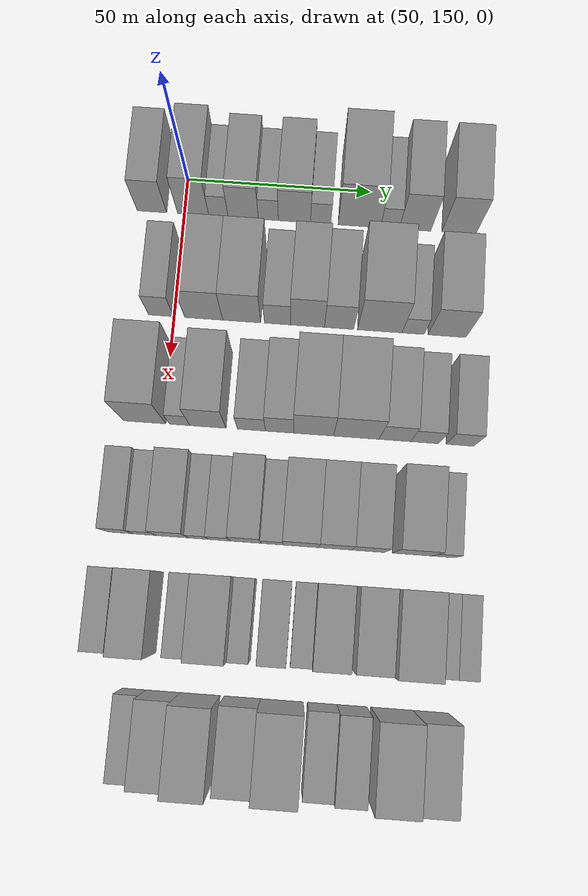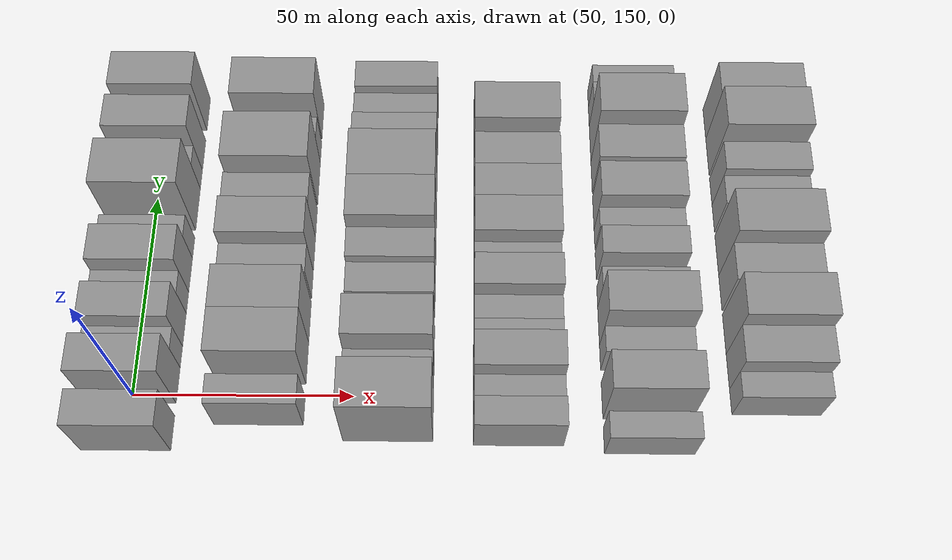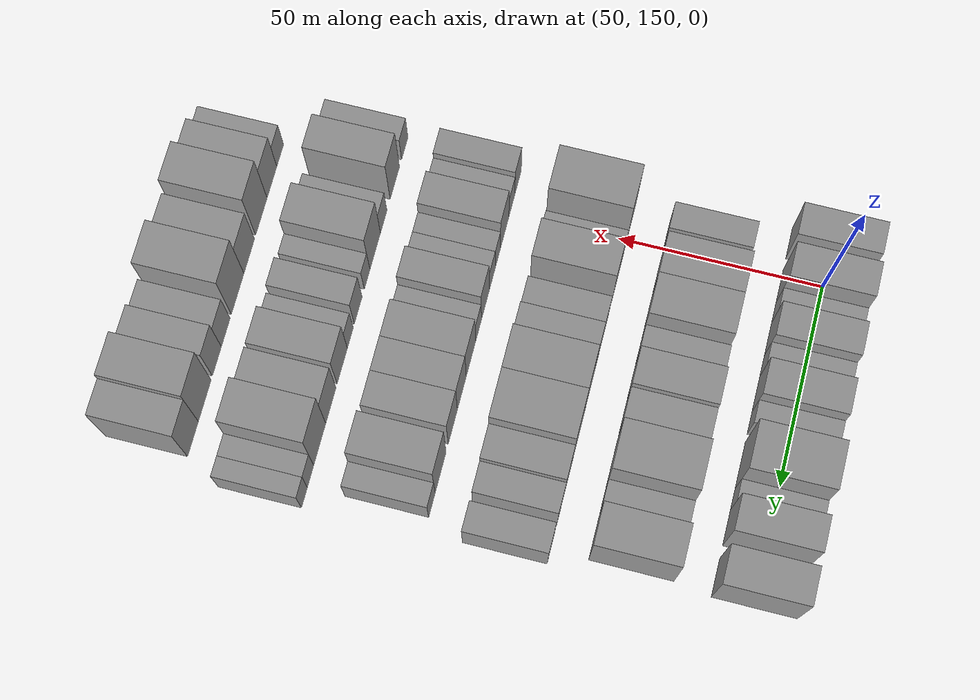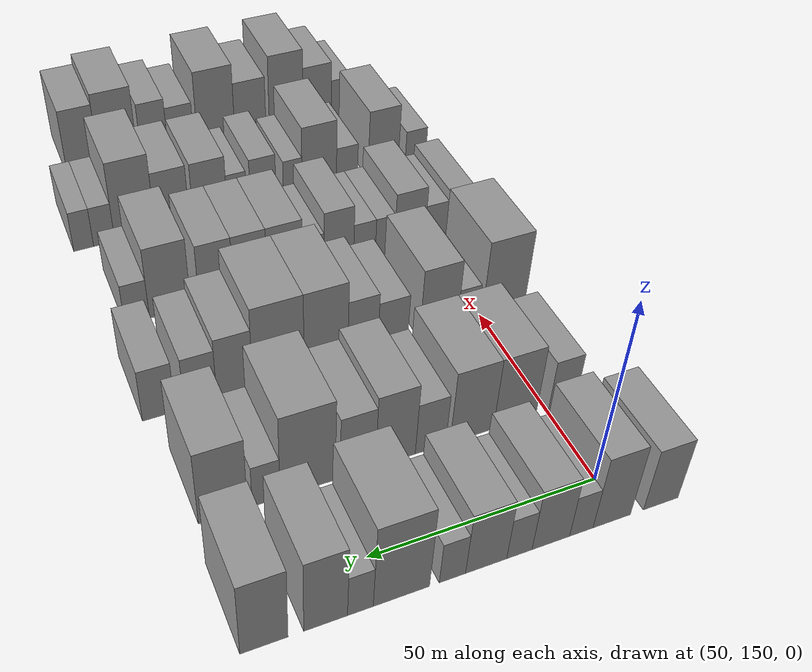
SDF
<sdf version="1.6">
 <world name="default">
  <model name="building_71">
   <static>1</static>
   <pose>50.0000 141.1363 0 0.000000 0.000000 0.000000</pose>
   <link name="link">
    <pose>0 0 9.00 0 0 0</pose>
    <collision name="collision"><geometry><box><size>20.0000 7.9999 18.0000</size></box></geometry></collision>
    <visual name="visual">
     <cast_shadows>0</cast_shadows>
     <geometry><box><size>20.0000 7.9999 18.0000</size></box></geometry>
     <material>
      <script>
       <uri>model://grey_wall/materials/scripts</uri>
       <uri>model://grey_wall/materials/textures</uri>
       <name>vrc/grey_wall</name>
      </script>
     </material>
    </visual>
   </link>
  </model>
  <model name="building_72">
   <static>1</static>
   <pose>50.0000 152.3691 0 0.000000 0.000000 0.000000</pose>
   <link name="link">
    <pose>0 0 10.50 0 0 0</pose>
    <collision name="collision"><geometry><box><size>20.0000 8.4655 21.0000</size></box></geometry></collision>
    <visual name="visual">
     <cast_shadows>0</cast_shadows>
     <geometry><box><size>20.0000 8.4655 21.0000</size></box></geometry>
     <material>
      <script>
       <uri>model://grey_wall/materials/scripts</uri>
       <uri>model://grey_wall/materials/textures</uri>
       <name>vrc/grey_wall</name>
      </script>
     </material>
    </visual>
   </link>
  </model>
  <model name="building_73">
   <static>1</static>
   <pose>50.0000 159.2128 0 0.000000 0.000000 0.000000</pose>
   <link name="link">
    <pose>0 0 6.00 0 0 0</pose>
    <collision name="collision"><geometry><box><size>20.0000 5.2221 12.0000</size></box></geometry></collision>
    <visual name="visual">
     <cast_shadows>0</cast_shadows>
     <geometry><box><size>20.0000 5.2221 12.0000</size></box></geometry>
     <material>
      <script>
       <uri>model://grey_wall/materials/scripts</uri>
       <uri>model://grey_wall/materials/textures</uri>
       <name>vrc/grey_wall</name>
      </script>
     </material>
    </visual>
   </link>
  </model>
  <model name="building_74">
   <static>1</static>
   <pose>50.0000 165.9320 0 0.000000 0.000000 0.000000</pose>
   <link name="link">
    <pose>0 0 9.00 0 0 0</pose>
    <collision name="collision"><geometry><box><size>20.0000 8.2162 18.0000</size></box></geometry></collision>
    <visual name="visual">
     <cast_shadows>0</cast_shadows>
     <geometry><box><size>20.0000 8.2162 18.0000</size></box></geometry>
     <material>
      <script>
       <uri>model://grey_wall/materials/scripts</uri>
       <uri>model://grey_wall/materials/textures</uri>
       <name>vrc/grey_wall</name>
      </script>
     </material>
    </visual>
   </link>
  </model>
  <model name="building_75">
   <static>1</static>
   <pose>50.0000 172.7649 0 0.000000 0.000000 0.000000</pose>
   <link name="link">
    <pose>0 0 6.00 0 0 0</pose>
    <collision name="collision"><geometry><box><size>20.0000 5.4496 12.0000</size></box></geometry></collision>
    <visual name="visual">
     <cast_shadows>0</cast_shadows>
     <geometry><box><size>20.0000 5.4496 12.0000</size></box></geometry>
     <material>
      <script>
       <uri>model://grey_wall/materials/scripts</uri>
       <uri>model://grey_wall/materials/textures</uri>
       <name>vrc/grey_wall</name>
      </script>
     </material>
    </visual>
   </link>
  </model>
  <model name="building_76">
   <static>1</static>
   <pose>50.0000 179.8505 0 0.000000 0.000000 0.000000</pose>
   <link name="link">
    <pose>0 0 9.00 0 0 0</pose>
    <collision name="collision"><geometry><box><size>20.0000 8.7217 18.0000</size></box></geometry></collision>
    <visual name="visual">
     <cast_shadows>0</cast_shadows>
     <geometry><box><size>20.0000 8.7217 18.0000</size></box></geometry>
     <material>
      <script>
       <uri>model://grey_wall/materials/scripts</uri>
       <uri>model://grey_wall/materials/textures</uri>
       <name>vrc/grey_wall</name>
      </script>
     </material>
    </visual>
   </link>
  </model>
  <model name="building_77">
   <static>1</static>
   <pose>50.0000 186.9442 0 0.000000 0.000000 0.000000</pose>
   <link name="link">
    <pose>0 0 6.00 0 0 0</pose>
    <collision name="collision"><geometry><box><size>20.0000 5.4655 12.0000</size></box></geometry></collision>
    <visual name="visual">
     <cast_shadows>0</cast_shadows>
     <geometry><box><size>20.0000 5.4655 12.0000</size></box></geometry>
     <material>
      <script>
       <uri>model://grey_wall/materials/scripts</uri>
       <uri>model://grey_wall/materials/textures</uri>
       <name>vrc/grey_wall</name>
      </script>
     </material>
    </visual>
   </link>
  </model>
  <model name="building_78">
   <static>1</static>
   <pose>50.0000 197.3817 0 0.000000 0.000000 0.000000</pose>
   <link name="link">
    <pose>0 0 12.00 0 0 0</pose>
    <collision name="collision"><geometry><box><size>20.0000 11.4096 24.0000</size></box></geometry></collision>
    <visual name="visual">
     <cast_shadows>0</cast_shadows>
     <geometry><box><size>20.0000 11.4096 24.0000</size></box></geometry>
     <material>
      <script>
       <uri>model://grey_wall/materials/scripts</uri>
       <uri>model://grey_wall/materials/textures</uri>
       <name>vrc/grey_wall</name>
      </script>
     </material>
    </visual>
   </link>
  </model>
  <model name="building_79">
   <static>1</static>
   <pose>50.0000 205.6428 0 0.000000 0.000000 0.000000</pose>
   <link name="link">
    <pose>0 0 6.00 0 0 0</pose>
    <collision name="collision"><geometry><box><size>20.0000 5.1127 12.0000</size></box></geometry></collision>
    <visual name="visual">
     <cast_shadows>0</cast_shadows>
     <geometry><box><size>20.0000 5.1127 12.0000</size></box></geometry>
     <material>
      <script>
       <uri>model://grey_wall/materials/scripts</uri>
       <uri>model://grey_wall/materials/textures</uri>
       <name>vrc/grey_wall</name>
      </script>
     </material>
    </visual>
   </link>
  </model>
  <model name="building_80">
   <static>1</static>
   <pose>50.0000 212.4688 0 0.000000 0.000000 0.000000</pose>
   <link name="link">
    <pose>0 0 10.50 0 0 0</pose>
    <collision name="collision"><geometry><box><size>20.0000 8.5393 21.0000</size></box></geometry></collision>
    <visual name="visual">
     <cast_shadows>0</cast_shadows>
     <geometry><box><size>20.0000 8.5393 21.0000</size></box></geometry>
     <material>
      <script>
       <uri>model://grey_wall/materials/scripts</uri>
       <uri>model://grey_wall/materials/textures</uri>
       <name>vrc/grey_wall</name>
      </script>
     </material>
    </visual>
   </link>
  </model>
  <model name="building_81">
   <static>1</static>
   <pose>50.0000 224.3114 0 0.000000 0.000000 0.000000</pose>
   <link name="link">
    <pose>0 0 10.50 0 0 0</pose>
    <collision name="collision"><geometry><box><size>20.0000 9.1458 21.0000</size></box></geometry></collision>
    <visual name="visual">
     <cast_shadows>0</cast_shadows>
     <geometry><box><size>20.0000 9.1458 21.0000</size></box></geometry>
     <material>
      <script>
       <uri>model://grey_wall/materials/scripts</uri>
       <uri>model://grey_wall/materials/textures</uri>
       <name>vrc/grey_wall</name>
      </script>
     </material>
    </visual>
   </link>
  </model>
  <model name="building_188">
   <static>1</static>
   <pose>79.0000 146.5189 0 0.000000 0.000000 0.000000</pose>
   <link name="link">
    <pose>0 0 7.50 0 0 0</pose>
    <collision name="collision"><geometry><box><size>20.0000 6.6258 15.0000</size></box></geometry></collision>
    <visual name="visual">
     <cast_shadows>0</cast_shadows>
     <geometry><box><size>20.0000 6.6258 15.0000</size></box></geometry>
     <material>
      <script>
       <uri>model://grey_wall/materials/scripts</uri>
       <uri>model://grey_wall/materials/textures</uri>
       <name>vrc/grey_wall</name>
      </script>
     </material>
    </visual>
   </link>
  </model>
  <model name="building_189">
   <static>1</static>
   <pose>79.0000 157.8905 0 0.000000 0.000000 0.000000</pose>
   <link name="link">
    <pose>0 0 10.50 0 0 0</pose>
    <collision name="collision"><geometry><box><size>20.0000 10.1173 21.0000</size></box></geometry></collision>
    <visual name="visual">
     <cast_shadows>0</cast_shadows>
     <geometry><box><size>20.0000 10.1173 21.0000</size></box></geometry>
     <material>
      <script>
       <uri>model://grey_wall/materials/scripts</uri>
       <uri>model://grey_wall/materials/textures</uri>
       <name>vrc/grey_wall</name>
      </script>
     </material>
    </visual>
   </link>
  </model>
  <model name="building_190">
   <static>1</static>
   <pose>79.0000 167.9952 0 0.000000 0.000000 0.000000</pose>
   <link name="link">
    <pose>0 0 10.50 0 0 0</pose>
    <collision name="collision"><geometry><box><size>20.0000 10.0921 21.0000</size></box></geometry></collision>
    <visual name="visual">
     <cast_shadows>0</cast_shadows>
     <geometry><box><size>20.0000 10.0921 21.0000</size></box></geometry>
     <material>
      <script>
       <uri>model://grey_wall/materials/scripts</uri>
       <uri>model://grey_wall/materials/textures</uri>
       <name>vrc/grey_wall</name>
      </script>
     </material>
    </visual>
   </link>
  </model>
  <model name="building_191">
   <static>1</static>
   <pose>79.0000 177.5131 0 0.000000 0.000000 0.000000</pose>
   <link name="link">
    <pose>0 0 7.50 0 0 0</pose>
    <collision name="collision"><geometry><box><size>20.0000 6.9435 15.0000</size></box></geometry></collision>
    <visual name="visual">
     <cast_shadows>0</cast_shadows>
     <geometry><box><size>20.0000 6.9435 15.0000</size></box></geometry>
     <material>
      <script>
       <uri>model://grey_wall/materials/scripts</uri>
       <uri>model://grey_wall/materials/textures</uri>
       <name>vrc/grey_wall</name>
      </script>
     </material>
    </visual>
   </link>
  </model>
  <model name="building_192">
   <static>1</static>
   <pose>79.0000 185.4568 0 0.000000 0.000000 0.000000</pose>
   <link name="link">
    <pose>0 0 10.50 0 0 0</pose>
    <collision name="collision"><geometry><box><size>20.0000 8.9440 21.0000</size></box></geometry></collision>
    <visual name="visual">
     <cast_shadows>0</cast_shadows>
     <geometry><box><size>20.0000 8.9440 21.0000</size></box></geometry>
     <material>
      <script>
       <uri>model://grey_wall/materials/scripts</uri>
       <uri>model://grey_wall/materials/textures</uri>
       <name>vrc/grey_wall</name>
      </script>
     </material>
    </visual>
   </link>
  </model>
  <model name="building_193">
   <static>1</static>
   <pose>79.0000 193.8151 0 0.000000 0.000000 0.000000</pose>
   <link name="link">
    <pose>0 0 9.00 0 0 0</pose>
    <collision name="collision"><geometry><box><size>20.0000 7.7726 18.0000</size></box></geometry></collision>
    <visual name="visual">
     <cast_shadows>0</cast_shadows>
     <geometry><box><size>20.0000 7.7726 18.0000</size></box></geometry>
     <material>
      <script>
       <uri>model://grey_wall/materials/scripts</uri>
       <uri>model://grey_wall/materials/textures</uri>
       <name>vrc/grey_wall</name>
      </script>
     </material>
    </visual>
   </link>
  </model>
  <model name="building_194">
   <static>1</static>
   <pose>79.0000 204.6078 0 0.000000 0.000000 0.000000</pose>
   <link name="link">
    <pose>0 0 12.00 0 0 0</pose>
    <collision name="collision"><geometry><box><size>20.0000 11.8128 24.0000</size></box></geometry></collision>
    <visual name="visual">
     <cast_shadows>0</cast_shadows>
     <geometry><box><size>20.0000 11.8128 24.0000</size></box></geometry>
     <material>
      <script>
       <uri>model://grey_wall/materials/scripts</uri>
       <uri>model://grey_wall/materials/textures</uri>
       <name>vrc/grey_wall</name>
      </script>
     </material>
    </visual>
   </link>
  </model>
  <model name="building_195">
   <static>1</static>
   <pose>79.0000 213.4443 0 0.000000 0.000000 0.000000</pose>
   <link name="link">
    <pose>0 0 6.00 0 0 0</pose>
    <collision name="collision"><geometry><box><size>20.0000 5.8600 12.0000</size></box></geometry></collision>
    <visual name="visual">
     <cast_shadows>0</cast_shadows>
     <geometry><box><size>20.0000 5.8600 12.0000</size></box></geometry>
     <material>
      <script>
       <uri>model://grey_wall/materials/scripts</uri>
       <uri>model://grey_wall/materials/textures</uri>
       <name>vrc/grey_wall</name>
      </script>
     </material>
    </visual>
   </link>
  </model>
  <model name="building_196">
   <static>1</static>
   <pose>79.0000 222.4169 0 0.000000 0.000000 0.000000</pose>
   <link name="link">
    <pose>0 0 10.50 0 0 0</pose>
    <collision name="collision"><geometry><box><size>20.0000 10.0852 21.0000</size></box></geometry></collision>
    <visual name="visual">
     <cast_shadows>0</cast_shadows>
     <geometry><box><size>20.0000 10.0852 21.0000</size></box></geometry>
     <material>
      <script>
       <uri>model://grey_wall/materials/scripts</uri>
       <uri>model://grey_wall/materials/textures</uri>
       <name>vrc/grey_wall</name>
      </script>
     </material>
    </visual>
   </link>
  </model>
  <model name="building_300">
   <static>1</static>
   <pose>108.0000 145.1616 0 0.000000 0.000000 0.000000</pose>
   <link name="link">
    <pose>0 0 12.00 0 0 0</pose>
    <collision name="collision"><geometry><box><size>20.0000 11.0060 24.0000</size></box></geometry></collision>
    <visual name="visual">
     <cast_shadows>0</cast_shadows>
     <geometry><box><size>20.0000 11.0060 24.0000</size></box></geometry>
     <material>
      <script>
       <uri>model://grey_wall/materials/scripts</uri>
       <uri>model://grey_wall/materials/textures</uri>
       <name>vrc/grey_wall</name>
      </script>
     </material>
    </visual>
   </link>
  </model>
  <model name="building_301">
   <static>1</static>
   <pose>108.0000 154.2971 0 0.000000 0.000000 0.000000</pose>
   <link name="link">
    <pose>0 0 6.00 0 0 0</pose>
    <collision name="collision"><geometry><box><size>20.0000 5.2651 12.0000</size></box></geometry></collision>
    <visual name="visual">
     <cast_shadows>0</cast_shadows>
     <geometry><box><size>20.0000 5.2651 12.0000</size></box></geometry>
     <material>
      <script>
       <uri>model://grey_wall/materials/scripts</uri>
       <uri>model://grey_wall/materials/textures</uri>
       <name>vrc/grey_wall</name>
      </script>
     </material>
    </visual>
   </link>
  </model>
  <model name="building_302">
   <static>1</static>
   <pose>108.0000 161.6282 0 0.000000 0.000000 0.000000</pose>
   <link name="link">
    <pose>0 0 10.50 0 0 0</pose>
    <collision name="collision"><geometry><box><size>20.0000 9.3971 21.0000</size></box></geometry></collision>
    <visual name="visual">
     <cast_shadows>0</cast_shadows>
     <geometry><box><size>20.0000 9.3971 21.0000</size></box></geometry>
     <material>
      <script>
       <uri>model://grey_wall/materials/scripts</uri>
       <uri>model://grey_wall/materials/textures</uri>
       <name>vrc/grey_wall</name>
      </script>
     </material>
    </visual>
   </link>
  </model>
  <model name="building_303">
   <static>1</static>
   <pose>108.0000 172.9795 0 0.000000 0.000000 0.000000</pose>
   <link name="link">
    <pose>0 0 7.50 0 0 0</pose>
    <collision name="collision"><geometry><box><size>20.0000 7.3055 15.0000</size></box></geometry></collision>
    <visual name="visual">
     <cast_shadows>0</cast_shadows>
     <geometry><box><size>20.0000 7.3055 15.0000</size></box></geometry>
     <material>
      <script>
       <uri>model://grey_wall/materials/scripts</uri>
       <uri>model://grey_wall/materials/textures</uri>
       <name>vrc/grey_wall</name>
      </script>
     </material>
    </visual>
   </link>
  </model>
  <model name="building_304">
   <static>1</static>
   <pose>108.0000 180.2680 0 0.000000 0.000000 0.000000</pose>
   <link name="link">
    <pose>0 0 9.00 0 0 0</pose>
    <collision name="collision"><geometry><box><size>20.0000 7.2714 18.0000</size></box></geometry></collision>
    <visual name="visual">
     <cast_shadows>0</cast_shadows>
     <geometry><box><size>20.0000 7.2714 18.0000</size></box></geometry>
     <material>
      <script>
       <uri>model://grey_wall/materials/scripts</uri>
       <uri>model://grey_wall/materials/textures</uri>
       <name>vrc/grey_wall</name>
      </script>
     </material>
    </visual>
   </link>
  </model>
  <model name="building_305">
   <static>1</static>
   <pose>108.0000 189.0621 0 0.000000 0.000000 0.000000</pose>
   <link name="link">
    <pose>0 0 12.00 0 0 0</pose>
    <collision name="collision"><geometry><box><size>20.0000 10.3168 24.0000</size></box></geometry></collision>
    <visual name="visual">
     <cast_shadows>0</cast_shadows>
     <geometry><box><size>20.0000 10.3168 24.0000</size></box></geometry>
     <material>
      <script>
       <uri>model://grey_wall/materials/scripts</uri>
       <uri>model://grey_wall/materials/textures</uri>
       <name>vrc/grey_wall</name>
      </script>
     </material>
    </visual>
   </link>
  </model>
  <model name="building_306">
   <static>1</static>
   <pose>108.0000 200.1422 0 0.000000 0.000000 0.000000</pose>
   <link name="link">
    <pose>0 0 12.00 0 0 0</pose>
    <collision name="collision"><geometry><box><size>20.0000 11.8435 24.0000</size></box></geometry></collision>
    <visual name="visual">
     <cast_shadows>0</cast_shadows>
     <geometry><box><size>20.0000 11.8435 24.0000</size></box></geometry>
     <material>
      <script>
       <uri>model://grey_wall/materials/scripts</uri>
       <uri>model://grey_wall/materials/textures</uri>
       <name>vrc/grey_wall</name>
      </script>
     </material>
    </visual>
   </link>
  </model>
  <model name="building_307">
   <static>1</static>
   <pose>108.0000 210.1388 0 0.000000 0.000000 0.000000</pose>
   <link name="link">
    <pose>0 0 9.00 0 0 0</pose>
    <collision name="collision"><geometry><box><size>20.0000 8.1497 18.0000</size></box></geometry></collision>
    <visual name="visual">
     <cast_shadows>0</cast_shadows>
     <geometry><box><size>20.0000 8.1497 18.0000</size></box></geometry>
     <material>
      <script>
       <uri>model://grey_wall/materials/scripts</uri>
       <uri>model://grey_wall/materials/textures</uri>
       <name>vrc/grey_wall</name>
      </script>
     </material>
    </visual>
   </link>
  </model>
  <model name="building_308">
   <static>1</static>
   <pose>108.0000 217.8479 0 0.000000 0.000000 0.000000</pose>
   <link name="link">
    <pose>0 0 7.50 0 0 0</pose>
    <collision name="collision"><geometry><box><size>20.0000 7.2685 15.0000</size></box></geometry></collision>
    <visual name="visual">
     <cast_shadows>0</cast_shadows>
     <geometry><box><size>20.0000 7.2685 15.0000</size></box></geometry>
     <material>
      <script>
       <uri>model://grey_wall/materials/scripts</uri>
       <uri>model://grey_wall/materials/textures</uri>
       <name>vrc/grey_wall</name>
      </script>
     </material>
    </visual>
   </link>
  </model>
  <model name="building_309">
   <static>1</static>
   <pose>108.0000 227.0810 0 0.000000 0.000000 0.000000</pose>
   <link name="link">
    <pose>0 0 7.50 0 0 0</pose>
    <collision name="collision"><geometry><box><size>20.0000 7.1978 15.0000</size></box></geometry></collision>
    <visual name="visual">
     <cast_shadows>0</cast_shadows>
     <geometry><box><size>20.0000 7.1978 15.0000</size></box></geometry>
     <material>
      <script>
       <uri>model://grey_wall/materials/scripts</uri>
       <uri>model://grey_wall/materials/textures</uri>
       <name>vrc/grey_wall</name>
      </script>
     </material>
    </visual>
   </link>
  </model>
  <model name="building_408">
   <static>1</static>
   <pose>137.0000 142.1293 0 0.000000 0.000000 0.000000</pose>
   <link name="link">
    <pose>0 0 7.50 0 0 0</pose>
    <collision name="collision"><geometry><box><size>20.0000 6.4981 15.0000</size></box></geometry></collision>
    <visual name="visual">
     <cast_shadows>0</cast_shadows>
     <geometry><box><size>20.0000 6.4981 15.0000</size></box></geometry>
     <material>
      <script>
       <uri>model://grey_wall/materials/scripts</uri>
       <uri>model://grey_wall/materials/textures</uri>
       <name>vrc/grey_wall</name>
      </script>
     </material>
    </visual>
   </link>
  </model>
  <model name="building_409">
   <static>1</static>
   <pose>137.0000 148.3256 0 0.000000 0.000000 0.000000</pose>
   <link name="link">
    <pose>0 0 6.00 0 0 0</pose>
    <collision name="collision"><geometry><box><size>20.0000 5.8945 12.0000</size></box></geometry></collision>
    <visual name="visual">
     <cast_shadows>0</cast_shadows>
     <geometry><box><size>20.0000 5.8945 12.0000</size></box></geometry>
     <material>
      <script>
       <uri>model://grey_wall/materials/scripts</uri>
       <uri>model://grey_wall/materials/textures</uri>
       <name>vrc/grey_wall</name>
      </script>
     </material>
    </visual>
   </link>
  </model>
  <model name="building_410">
   <static>1</static>
   <pose>137.0000 155.3718 0 0.000000 0.000000 0.000000</pose>
   <link name="link">
    <pose>0 0 9.00 0 0 0</pose>
    <collision name="collision"><geometry><box><size>20.0000 8.1979 18.0000</size></box></geometry></collision>
    <visual name="visual">
     <cast_shadows>0</cast_shadows>
     <geometry><box><size>20.0000 8.1979 18.0000</size></box></geometry>
     <material>
      <script>
       <uri>model://grey_wall/materials/scripts</uri>
       <uri>model://grey_wall/materials/textures</uri>
       <name>vrc/grey_wall</name>
      </script>
     </material>
    </visual>
   </link>
  </model>
  <model name="building_411">
   <static>1</static>
   <pose>137.0000 161.9679 0 0.000000 0.000000 0.000000</pose>
   <link name="link">
    <pose>0 0 6.00 0 0 0</pose>
    <collision name="collision"><geometry><box><size>20.0000 4.9944 12.0000</size></box></geometry></collision>
    <visual name="visual">
     <cast_shadows>0</cast_shadows>
     <geometry><box><size>20.0000 4.9944 12.0000</size></box></geometry>
     <material>
      <script>
       <uri>model://grey_wall/materials/scripts</uri>
       <uri>model://grey_wall/materials/textures</uri>
       <name>vrc/grey_wall</name>
      </script>
     </material>
    </visual>
   </link>
  </model>
  <model name="building_412">
   <static>1</static>
   <pose>137.0000 167.3319 0 0.000000 0.000000 0.000000</pose>
   <link name="link">
    <pose>0 0 6.00 0 0 0</pose>
    <collision name="collision"><geometry><box><size>20.0000 5.7335 12.0000</size></box></geometry></collision>
    <visual name="visual">
     <cast_shadows>0</cast_shadows>
     <geometry><box><size>20.0000 5.7335 12.0000</size></box></geometry>
     <material>
      <script>
       <uri>model://grey_wall/materials/scripts</uri>
       <uri>model://grey_wall/materials/textures</uri>
       <name>vrc/grey_wall</name>
      </script>
     </material>
    </visual>
   </link>
  </model>
  <model name="building_413">
   <static>1</static>
   <pose>137.0000 174.0344 0 0.000000 0.000000 0.000000</pose>
   <link name="link">
    <pose>0 0 9.00 0 0 0</pose>
    <collision name="collision"><geometry><box><size>20.0000 7.6715 18.0000</size></box></geometry></collision>
    <visual name="visual">
     <cast_shadows>0</cast_shadows>
     <geometry><box><size>20.0000 7.6715 18.0000</size></box></geometry>
     <material>
      <script>
       <uri>model://grey_wall/materials/scripts</uri>
       <uri>model://grey_wall/materials/textures</uri>
       <name>vrc/grey_wall</name>
      </script>
     </material>
    </visual>
   </link>
  </model>
  <model name="building_414">
   <static>1</static>
   <pose>137.0000 180.6249 0 0.000000 0.000000 0.000000</pose>
   <link name="link">
    <pose>0 0 6.00 0 0 0</pose>
    <collision name="collision"><geometry><box><size>20.0000 5.5094 12.0000</size></box></geometry></collision>
    <visual name="visual">
     <cast_shadows>0</cast_shadows>
     <geometry><box><size>20.0000 5.5094 12.0000</size></box></geometry>
     <material>
      <script>
       <uri>model://grey_wall/materials/scripts</uri>
       <uri>model://grey_wall/materials/textures</uri>
       <name>vrc/grey_wall</name>
      </script>
     </material>
    </visual>
   </link>
  </model>
  <model name="building_415">
   <static>1</static>
   <pose>137.0000 187.8762 0 0.000000 0.000000 0.000000</pose>
   <link name="link">
    <pose>0 0 9.00 0 0 0</pose>
    <collision name="collision"><geometry><box><size>20.0000 8.9933 18.0000</size></box></geometry></collision>
    <visual name="visual">
     <cast_shadows>0</cast_shadows>
     <geometry><box><size>20.0000 8.9933 18.0000</size></box></geometry>
     <material>
      <script>
       <uri>model://grey_wall/materials/scripts</uri>
       <uri>model://grey_wall/materials/textures</uri>
       <name>vrc/grey_wall</name>
      </script>
     </material>
    </visual>
   </link>
  </model>
  <model name="building_416">
   <static>1</static>
   <pose>137.0000 196.5267 0 0.000000 0.000000 0.000000</pose>
   <link name="link">
    <pose>0 0 9.00 0 0 0</pose>
    <collision name="collision"><geometry><box><size>20.0000 8.3077 18.0000</size></box></geometry></collision>
    <visual name="visual">
     <cast_shadows>0</cast_shadows>
     <geometry><box><size>20.0000 8.3077 18.0000</size></box></geometry>
     <material>
      <script>
       <uri>model://grey_wall/materials/scripts</uri>
       <uri>model://grey_wall/materials/textures</uri>
       <name>vrc/grey_wall</name>
      </script>
     </material>
    </visual>
   </link>
  </model>
  <model name="building_417">
   <static>1</static>
   <pose>137.0000 204.8929 0 0.000000 0.000000 0.000000</pose>
   <link name="link">
    <pose>0 0 9.00 0 0 0</pose>
    <collision name="collision"><geometry><box><size>20.0000 8.4247 18.0000</size></box></geometry></collision>
    <visual name="visual">
     <cast_shadows>0</cast_shadows>
     <geometry><box><size>20.0000 8.4247 18.0000</size></box></geometry>
     <material>
      <script>
       <uri>model://grey_wall/materials/scripts</uri>
       <uri>model://grey_wall/materials/textures</uri>
       <name>vrc/grey_wall</name>
      </script>
     </material>
    </visual>
   </link>
  </model>
  <model name="building_418">
   <static>1</static>
   <pose>137.0000 216.0591 0 0.000000 0.000000 0.000000</pose>
   <link name="link">
    <pose>0 0 10.50 0 0 0</pose>
    <collision name="collision"><geometry><box><size>20.0000 9.9078 21.0000</size></box></geometry></collision>
    <visual name="visual">
     <cast_shadows>0</cast_shadows>
     <geometry><box><size>20.0000 9.9078 21.0000</size></box></geometry>
     <material>
      <script>
       <uri>model://grey_wall/materials/scripts</uri>
       <uri>model://grey_wall/materials/textures</uri>
       <name>vrc/grey_wall</name>
      </script>
     </material>
    </visual>
   </link>
  </model>
  <model name="building_419">
   <static>1</static>
   <pose>137.0000 223.9644 0 0.000000 0.000000 0.000000</pose>
   <link name="link">
    <pose>0 0 6.00 0 0 0</pose>
    <collision name="collision"><geometry><box><size>20.0000 5.9028 12.0000</size></box></geometry></collision>
    <visual name="visual">
     <cast_shadows>0</cast_shadows>
     <geometry><box><size>20.0000 5.9028 12.0000</size></box></geometry>
     <material>
      <script>
       <uri>model://grey_wall/materials/scripts</uri>
       <uri>model://grey_wall/materials/textures</uri>
       <name>vrc/grey_wall</name>
      </script>
     </material>
    </visual>
   </link>
  </model>
  <model name="building_527">
   <static>1</static>
   <pose>166.0000 140.1995 0 0.000000 0.000000 0.000000</pose>
   <link name="link">
    <pose>0 0 6.00 0 0 0</pose>
    <collision name="collision"><geometry><box><size>20.0000 5.9595 12.0000</size></box></geometry></collision>
    <visual name="visual">
     <cast_shadows>0</cast_shadows>
     <geometry><box><size>20.0000 5.9595 12.0000</size></box></geometry>
     <material>
      <script>
       <uri>model://grey_wall/materials/scripts</uri>
       <uri>model://grey_wall/materials/textures</uri>
       <name>vrc/grey_wall</name>
      </script>
     </material>
    </visual>
   </link>
  </model>
  <model name="building_528">
   <static>1</static>
   <pose>166.0000 149.4907 0 0.000000 0.000000 0.000000</pose>
   <link name="link">
    <pose>0 0 10.50 0 0 0</pose>
    <collision name="collision"><geometry><box><size>20.0000 8.6230 21.0000</size></box></geometry></collision>
    <visual name="visual">
     <cast_shadows>0</cast_shadows>
     <geometry><box><size>20.0000 8.6230 21.0000</size></box></geometry>
     <material>
      <script>
       <uri>model://grey_wall/materials/scripts</uri>
       <uri>model://grey_wall/materials/textures</uri>
       <name>vrc/grey_wall</name>
      </script>
     </material>
    </visual>
   </link>
  </model>
  <model name="building_529">
   <static>1</static>
   <pose>166.0000 159.7772 0 0.000000 0.000000 0.000000</pose>
   <link name="link">
    <pose>0 0 6.00 0 0 0</pose>
    <collision name="collision"><geometry><box><size>20.0000 5.9499 12.0000</size></box></geometry></collision>
    <visual name="visual">
     <cast_shadows>0</cast_shadows>
     <geometry><box><size>20.0000 5.9499 12.0000</size></box></geometry>
     <material>
      <script>
       <uri>model://grey_wall/materials/scripts</uri>
       <uri>model://grey_wall/materials/textures</uri>
       <name>vrc/grey_wall</name>
      </script>
     </material>
    </visual>
   </link>
  </model>
  <model name="building_530">
   <static>1</static>
   <pose>166.0000 167.5281 0 0.000000 0.000000 0.000000</pose>
   <link name="link">
    <pose>0 0 10.50 0 0 0</pose>
    <collision name="collision"><geometry><box><size>20.0000 9.5521 21.0000</size></box></geometry></collision>
    <visual name="visual">
     <cast_shadows>0</cast_shadows>
     <geometry><box><size>20.0000 9.5521 21.0000</size></box></geometry>
     <material>
      <script>
       <uri>model://grey_wall/materials/scripts</uri>
       <uri>model://grey_wall/materials/textures</uri>
       <name>vrc/grey_wall</name>
      </script>
     </material>
    </visual>
   </link>
  </model>
  <model name="building_531">
   <static>1</static>
   <pose>166.0000 174.8528 0 0.000000 0.000000 0.000000</pose>
   <link name="link">
    <pose>0 0 6.00 0 0 0</pose>
    <collision name="collision"><geometry><box><size>20.0000 5.0972 12.0000</size></box></geometry></collision>
    <visual name="visual">
     <cast_shadows>0</cast_shadows>
     <geometry><box><size>20.0000 5.0972 12.0000</size></box></geometry>
     <material>
      <script>
       <uri>model://grey_wall/materials/scripts</uri>
       <uri>model://grey_wall/materials/textures</uri>
       <name>vrc/grey_wall</name>
      </script>
     </material>
    </visual>
   </link>
  </model>
  <model name="building_532">
   <static>1</static>
   <pose>166.0000 182.8700 0 0.000000 0.000000 0.000000</pose>
   <link name="link">
    <pose>0 0 7.50 0 0 0</pose>
    <collision name="collision"><geometry><box><size>20.0000 6.9372 15.0000</size></box></geometry></collision>
    <visual name="visual">
     <cast_shadows>0</cast_shadows>
     <geometry><box><size>20.0000 6.9372 15.0000</size></box></geometry>
     <material>
      <script>
       <uri>model://grey_wall/materials/scripts</uri>
       <uri>model://grey_wall/materials/textures</uri>
       <name>vrc/grey_wall</name>
      </script>
     </material>
    </visual>
   </link>
  </model>
  <model name="building_533">
   <static>1</static>
   <pose>166.0000 189.9341 0 0.000000 0.000000 0.000000</pose>
   <link name="link">
    <pose>0 0 6.00 0 0 0</pose>
    <collision name="collision"><geometry><box><size>20.0000 5.1910 12.0000</size></box></geometry></collision>
    <visual name="visual">
     <cast_shadows>0</cast_shadows>
     <geometry><box><size>20.0000 5.1910 12.0000</size></box></geometry>
     <material>
      <script>
       <uri>model://grey_wall/materials/scripts</uri>
       <uri>model://grey_wall/materials/textures</uri>
       <name>vrc/grey_wall</name>
      </script>
     </material>
    </visual>
   </link>
  </model>
  <model name="building_534">
   <static>1</static>
   <pose>166.0000 197.0126 0 0.000000 0.000000 0.000000</pose>
   <link name="link">
    <pose>0 0 9.00 0 0 0</pose>
    <collision name="collision"><geometry><box><size>20.0000 8.9659 18.0000</size></box></geometry></collision>
    <visual name="visual">
     <cast_shadows>0</cast_shadows>
     <geometry><box><size>20.0000 8.9659 18.0000</size></box></geometry>
     <material>
      <script>
       <uri>model://grey_wall/materials/scripts</uri>
       <uri>model://grey_wall/materials/textures</uri>
       <name>vrc/grey_wall</name>
      </script>
     </material>
    </visual>
   </link>
  </model>
  <model name="building_535">
   <static>1</static>
   <pose>166.0000 206.9370 0 0.000000 0.000000 0.000000</pose>
   <link name="link">
    <pose>0 0 9.00 0 0 0</pose>
    <collision name="collision"><geometry><box><size>20.0000 8.8829 18.0000</size></box></geometry></collision>
    <visual name="visual">
     <cast_shadows>0</cast_shadows>
     <geometry><box><size>20.0000 8.8829 18.0000</size></box></geometry>
     <material>
      <script>
       <uri>model://grey_wall/materials/scripts</uri>
       <uri>model://grey_wall/materials/textures</uri>
       <name>vrc/grey_wall</name>
      </script>
     </material>
    </visual>
   </link>
  </model>
  <model name="building_536">
   <static>1</static>
   <pose>166.0000 216.5528 0 0.000000 0.000000 0.000000</pose>
   <link name="link">
    <pose>0 0 12.00 0 0 0</pose>
    <collision name="collision"><geometry><box><size>20.0000 10.3487 24.0000</size></box></geometry></collision>
    <visual name="visual">
     <cast_shadows>0</cast_shadows>
     <geometry><box><size>20.0000 10.3487 24.0000</size></box></geometry>
     <material>
      <script>
       <uri>model://grey_wall/materials/scripts</uri>
       <uri>model://grey_wall/materials/textures</uri>
       <name>vrc/grey_wall</name>
      </script>
     </material>
    </visual>
   </link>
  </model>
  <model name="building_537">
   <static>1</static>
   <pose>166.0000 224.3945 0 0.000000 0.000000 0.000000</pose>
   <link name="link">
    <pose>0 0 6.00 0 0 0</pose>
    <collision name="collision"><geometry><box><size>20.0000 5.3346 12.0000</size></box></geometry></collision>
    <visual name="visual">
     <cast_shadows>0</cast_shadows>
     <geometry><box><size>20.0000 5.3346 12.0000</size></box></geometry>
     <material>
      <script>
       <uri>model://grey_wall/materials/scripts</uri>
       <uri>model://grey_wall/materials/textures</uri>
       <name>vrc/grey_wall</name>
      </script>
     </material>
    </visual>
   </link>
  </model>
  <model name="building_538">
   <static>1</static>
   <pose>166.0000 229.5328 0 0.000000 0.000000 0.000000</pose>
   <link name="link">
    <pose>0 0 6.00 0 0 0</pose>
    <collision name="collision"><geometry><box><size>20.0000 4.9421 12.0000</size></box></geometry></collision>
    <visual name="visual">
     <cast_shadows>0</cast_shadows>
     <geometry><box><size>20.0000 4.9421 12.0000</size></box></geometry>
     <material>
      <script>
       <uri>model://grey_wall/materials/scripts</uri>
       <uri>model://grey_wall/materials/textures</uri>
       <name>vrc/grey_wall</name>
      </script>
     </material>
    </visual>
   </link>
  </model>
  <model name="building_633">
   <static>1</static>
   <pose>195.0000 149.4208 0 0.000000 0.000000 0.000000</pose>
   <link name="link">
    <pose>0 0 6.00 0 0 0</pose>
    <collision name="collision"><geometry><box><size>20.0000 5.9363 12.0000</size></box></geometry></collision>
    <visual name="visual">
     <cast_shadows>0</cast_shadows>
     <geometry><box><size>20.0000 5.9363 12.0000</size></box></geometry>
     <material>
      <script>
       <uri>model://grey_wall/materials/scripts</uri>
       <uri>model://grey_wall/materials/textures</uri>
       <name>vrc/grey_wall</name>
      </script>
     </material>
    </visual>
   </link>
  </model>
  <model name="building_634">
   <static>1</static>
   <pose>195.0000 156.6186 0 0.000000 0.000000 0.000000</pose>
   <link name="link">
    <pose>0 0 9.00 0 0 0</pose>
    <collision name="collision"><geometry><box><size>20.0000 8.4592 18.0000</size></box></geometry></collision>
    <visual name="visual">
     <cast_shadows>0</cast_shadows>
     <geometry><box><size>20.0000 8.4592 18.0000</size></box></geometry>
     <material>
      <script>
       <uri>model://grey_wall/materials/scripts</uri>
       <uri>model://grey_wall/materials/textures</uri>
       <name>vrc/grey_wall</name>
      </script>
     </material>
    </visual>
   </link>
  </model>
  <model name="building_635">
   <static>1</static>
   <pose>195.0000 165.7668 0 0.000000 0.000000 0.000000</pose>
   <link name="link">
    <pose>0 0 12.00 0 0 0</pose>
    <collision name="collision"><geometry><box><size>20.0000 9.8373 24.0000</size></box></geometry></collision>
    <visual name="visual">
     <cast_shadows>0</cast_shadows>
     <geometry><box><size>20.0000 9.8373 24.0000</size></box></geometry>
     <material>
      <script>
       <uri>model://grey_wall/materials/scripts</uri>
       <uri>model://grey_wall/materials/textures</uri>
       <name>vrc/grey_wall</name>
      </script>
     </material>
    </visual>
   </link>
  </model>
  <model name="building_636">
   <static>1</static>
   <pose>195.0000 176.1758 0 0.000000 0.000000 0.000000</pose>
   <link name="link">
    <pose>0 0 9.00 0 0 0</pose>
    <collision name="collision"><geometry><box><size>20.0000 8.9806 18.0000</size></box></geometry></collision>
    <visual name="visual">
     <cast_shadows>0</cast_shadows>
     <geometry><box><size>20.0000 8.9806 18.0000</size></box></geometry>
     <material>
      <script>
       <uri>model://grey_wall/materials/scripts</uri>
       <uri>model://grey_wall/materials/textures</uri>
       <name>vrc/grey_wall</name>
      </script>
     </material>
    </visual>
   </link>
  </model>
  <model name="building_637">
   <static>1</static>
   <pose>195.0000 185.9520 0 0.000000 0.000000 0.000000</pose>
   <link name="link">
    <pose>0 0 12.00 0 0 0</pose>
    <collision name="collision"><geometry><box><size>20.0000 10.5719 24.0000</size></box></geometry></collision>
    <visual name="visual">
     <cast_shadows>0</cast_shadows>
     <geometry><box><size>20.0000 10.5719 24.0000</size></box></geometry>
     <material>
      <script>
       <uri>model://grey_wall/materials/scripts</uri>
       <uri>model://grey_wall/materials/textures</uri>
       <name>vrc/grey_wall</name>
      </script>
     </material>
    </visual>
   </link>
  </model>
  <model name="building_638">
   <static>1</static>
   <pose>195.0000 195.8692 0 0.000000 0.000000 0.000000</pose>
   <link name="link">
    <pose>0 0 7.50 0 0 0</pose>
    <collision name="collision"><geometry><box><size>20.0000 7.2623 15.0000</size></box></geometry></collision>
    <visual name="visual">
     <cast_shadows>0</cast_shadows>
     <geometry><box><size>20.0000 7.2623 15.0000</size></box></geometry>
     <material>
      <script>
       <uri>model://grey_wall/materials/scripts</uri>
       <uri>model://grey_wall/materials/textures</uri>
       <name>vrc/grey_wall</name>
      </script>
     </material>
    </visual>
   </link>
  </model>
  <model name="building_639">
   <static>1</static>
   <pose>195.0000 203.1931 0 0.000000 0.000000 0.000000</pose>
   <link name="link">
    <pose>0 0 9.00 0 0 0</pose>
    <collision name="collision"><geometry><box><size>20.0000 7.3855 18.0000</size></box></geometry></collision>
    <visual name="visual">
     <cast_shadows>0</cast_shadows>
     <geometry><box><size>20.0000 7.3855 18.0000</size></box></geometry>
     <material>
      <script>
       <uri>model://grey_wall/materials/scripts</uri>
       <uri>model://grey_wall/materials/textures</uri>
       <name>vrc/grey_wall</name>
      </script>
     </material>
    </visual>
   </link>
  </model>
  <model name="building_640">
   <static>1</static>
   <pose>195.0000 213.0607 0 0.000000 0.000000 0.000000</pose>
   <link name="link">
    <pose>0 0 12.00 0 0 0</pose>
    <collision name="collision"><geometry><box><size>20.0000 10.3497 24.0000</size></box></geometry></collision>
    <visual name="visual">
     <cast_shadows>0</cast_shadows>
     <geometry><box><size>20.0000 10.3497 24.0000</size></box></geometry>
     <material>
      <script>
       <uri>model://grey_wall/materials/scripts</uri>
       <uri>model://grey_wall/materials/textures</uri>
       <name>vrc/grey_wall</name>
      </script>
     </material>
    </visual>
   </link>
  </model>
  <model name="building_641">
   <static>1</static>
   <pose>195.0000 222.5648 0 0.000000 0.000000 0.000000</pose>
   <link name="link">
    <pose>0 0 10.50 0 0 0</pose>
    <collision name="collision"><geometry><box><size>20.0000 8.6585 21.0000</size></box></geometry></collision>
    <visual name="visual">
     <cast_shadows>0</cast_shadows>
     <geometry><box><size>20.0000 8.6585 21.0000</size></box></geometry>
     <material>
      <script>
       <uri>model://grey_wall/materials/scripts</uri>
       <uri>model://grey_wall/materials/textures</uri>
       <name>vrc/grey_wall</name>
      </script>
     </material>
    </visual>
   </link>
  </model>
 </world>
</sdf>
